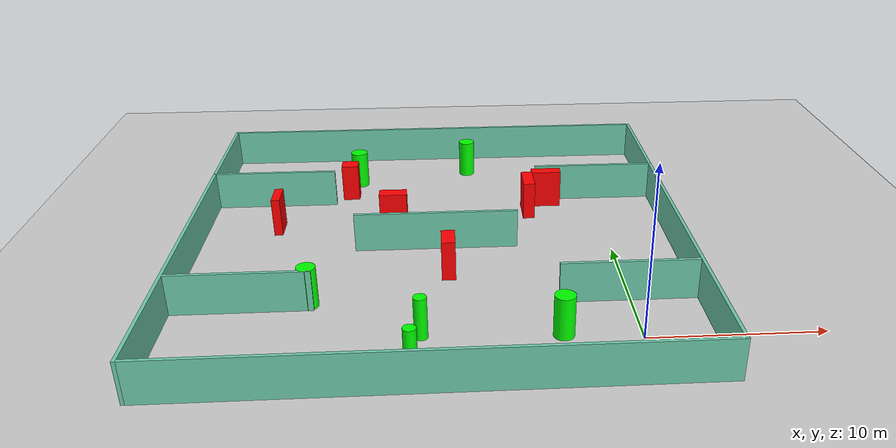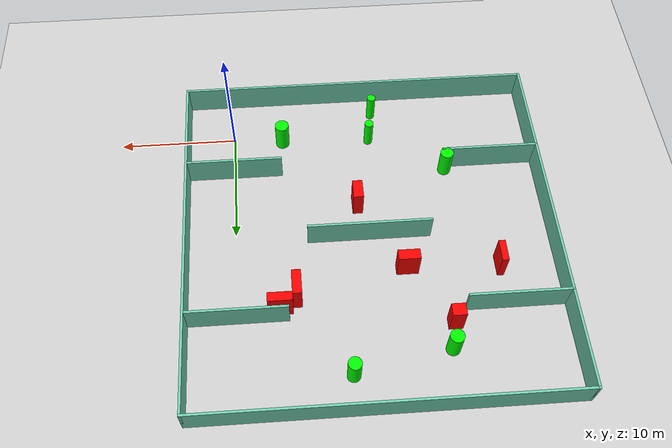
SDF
<sdf version="1.7">
 <world name="default">
  <light name="sun" type="directional">
   <pose>0 0 10 0 -0 0</pose>
   <diffuse>0.8 0.8 0.8 1</diffuse>
   <specular>0.2 0.2 0.2 1</specular>
   <attenuation>
    <range>1000</range>
    <constant>0.9</constant>
    <linear>0.01</linear>
    <quadratic>0.001</quadratic>
   </attenuation>
   <direction>-0.5 0.1 -0.9</direction>
   <spot><inner_angle>0</inner_angle><outer_angle>0</outer_angle><falloff>0</falloff></spot>
  </light>
  <model name="ground_plane">
   <static>1</static>
   <link name="link">
    <collision name="collision">
     <geometry><plane><normal>0 0 1</normal><size>100 100</size></plane></geometry>
     <surface>
      <contact><collide_bitmask>65535</collide_bitmask></contact>
      <friction><ode><mu>100</mu><mu2>50</mu2></ode></friction>
     </surface>
    </collision>
    <visual name="visual">
     <cast_shadows>0</cast_shadows>
     <geometry><plane><normal>0 0 1</normal><size>100 100</size></plane></geometry>
     <material>
      <script><uri>file://media/materials/scripts/gazebo.material</uri><name>Gazebo/Grey</name></script>
     </material>
    </visual>
   </link>
  </model>
  <gravity>0 0 -9.8</gravity>
  <magnetic_field>6e-06 2.3e-05 -4.2e-05</magnetic_field>
  <atmosphere type="adiabatic"/>
  <physics type="ode">
   <max_step_size>0.001</max_step_size>
   <real_time_factor>1</real_time_factor>
   <real_time_update_rate>1000</real_time_update_rate>
  </physics>
  <scene><ambient>0.4 0.4 0.4 1</ambient><background>0.7 0.7 0.7 1</background><shadows>1</shadows></scene>
  <spherical_coordinates>
   <surface_model>EARTH_WGS84</surface_model>
   <latitude_deg>0</latitude_deg>
   <longitude_deg>0</longitude_deg>
   <elevation>0</elevation>
   <heading_deg>0</heading_deg>
  </spherical_coordinates>
  <model name="my_base_walls">
   <link name="Wall_10">
    <collision name="Wall_10_Collision">
     <geometry><box><size>8.2 0.2 2.5</size></box></geometry>
     <pose>0 0 1.25 0 -0 0</pose>
    </collision>
    <visual name="Wall_10_Visual">
     <pose>0 0 1.25 0 -0 0</pose>
     <geometry><box><size>8.2 0.2 2.5</size></box></geometry>
     <material>
      <script><uri>file://media/materials/scripts/gazebo.material</uri><name>Gazebo/Grey</name></script>
      <ambient>0.435294 0.796078 0.67451 1</ambient>
     </material>
     <meta><layer>0</layer></meta>
    </visual>
    <pose>-11 -7 0 0 -0 0</pose>
   </link>
   <link name="Wall_12">
    <collision name="Wall_12_Collision">
     <geometry><box><size>8.2 0.2 2.5</size></box></geometry>
     <pose>0 0 1.25 0 -0 0</pose>
    </collision>
    <visual name="Wall_12_Visual">
     <pose>0 0 1.25 0 -0 0</pose>
     <geometry><box><size>8.2 0.2 2.5</size></box></geometry>
     <material>
      <script><uri>file://media/materials/scripts/gazebo.material</uri><name>Gazebo/Grey</name></script>
      <ambient>0.435294 0.796078 0.67451 1</ambient>
     </material>
     <meta><layer>0</layer></meta>
    </visual>
    <pose>-11 7 0 0 -0 0</pose>
   </link>
   <link name="Wall_14">
    <collision name="Wall_14_Collision">
     <geometry><box><size>8.2 0.2 2.5</size></box></geometry>
     <pose>0 0 1.25 0 -0 0</pose>
    </collision>
    <visual name="Wall_14_Visual">
     <pose>0 0 1.25 0 -0 0</pose>
     <geometry><box><size>8.2 0.2 2.5</size></box></geometry>
     <material>
      <script><uri>file://media/materials/scripts/gazebo.material</uri><name>Gazebo/Grey</name></script>
      <ambient>0.435294 0.796078 0.67451 1</ambient>
     </material>
     <meta><layer>0</layer></meta>
    </visual>
    <pose>11 7 0 0 -0 3.14159</pose>
   </link>
   <link name="Wall_16">
    <collision name="Wall_16_Collision">
     <geometry><box><size>10.2 0.2 2.5</size></box></geometry>
     <pose>0 0 1.25 0 -0 0</pose>
    </collision>
    <visual name="Wall_16_Visual">
     <pose>0 0 1.25 0 -0 0</pose>
     <geometry><box><size>10.2 0.2 2.5</size></box></geometry>
     <material>
      <script><uri>file://media/materials/scripts/gazebo.material</uri><name>Gazebo/Grey</name></script>
      <ambient>0.435294 0.796078 0.67451 1</ambient>
     </material>
     <meta><layer>0</layer></meta>
    </visual>
    <pose>0 0 0 0 -0 3.14159</pose>
   </link>
   <link name="Wall_2">
    <collision name="Wall_2_Collision">
     <geometry><box><size>30.2 0.2 2.5</size></box></geometry>
     <pose>0 0 1.25 0 -0 0</pose>
    </collision>
    <visual name="Wall_2_Visual">
     <pose>0 0 1.25 0 -0 0</pose>
     <geometry><box><size>30.2 0.2 2.5</size></box></geometry>
     <material>
      <script><uri>file://media/materials/scripts/gazebo.material</uri><name>Gazebo/Grey</name></script>
      <ambient>0.435294 0.796078 0.67451 1</ambient>
     </material>
     <meta><layer>0</layer></meta>
    </visual>
    <pose>0 -15 0 0 -0 3.14159</pose>
   </link>
   <link name="Wall_3">
    <collision name="Wall_3_Collision">
     <geometry><box><size>30.2 0.2 2.5</size></box></geometry>
     <pose>0 0 1.25 0 -0 0</pose>
    </collision>
    <visual name="Wall_3_Visual">
     <pose>0 0 1.25 0 -0 0</pose>
     <geometry><box><size>30.2 0.2 2.5</size></box></geometry>
     <material>
      <script><uri>file://media/materials/scripts/gazebo.material</uri><name>Gazebo/Grey</name></script>
      <ambient>0.435294 0.796078 0.67451 1</ambient>
     </material>
     <meta><layer>0</layer></meta>
    </visual>
    <pose>-15 0 0 0 -0 1.5708</pose>
   </link>
   <link name="Wall_4">
    <collision name="Wall_4_Collision">
     <geometry><box><size>30.2 0.2 2.5</size></box></geometry>
     <pose>0 0 1.25 0 -0 0</pose>
    </collision>
    <visual name="Wall_4_Visual">
     <pose>0 0 1.25 0 -0 0</pose>
     <geometry><box><size>30.2 0.2 2.5</size></box></geometry>
     <material>
      <script><uri>file://media/materials/scripts/gazebo.material</uri><name>Gazebo/Grey</name></script>
      <ambient>0.435294 0.796078 0.67451 1</ambient>
     </material>
     <meta><layer>0</layer></meta>
    </visual>
    <pose>0 15 0 0 -0 0</pose>
   </link>
   <link name="Wall_6">
    <collision name="Wall_6_Collision">
     <geometry><box><size>30.2 0.2 2.5</size></box></geometry>
     <pose>0 0 1.25 0 -0 0</pose>
    </collision>
    <visual name="Wall_6_Visual">
     <pose>0 0 1.25 0 -0 0</pose>
     <geometry><box><size>30.2 0.2 2.5</size></box></geometry>
     <material>
      <script><uri>file://media/materials/scripts/gazebo.material</uri><name>Gazebo/Grey</name></script>
      <ambient>0.435294 0.796078 0.67451 1</ambient>
     </material>
     <meta><layer>0</layer></meta>
    </visual>
    <pose>15 0 0 0 -0 1.5708</pose>
   </link>
   <link name="Wall_8">
    <collision name="Wall_8_Collision">
     <geometry><box><size>8.2 0.2 2.5</size></box></geometry>
     <pose>0 0 1.25 0 -0 0</pose>
    </collision>
    <visual name="Wall_8_Visual">
     <pose>0 0 1.25 0 -0 0</pose>
     <geometry><box><size>8.2 0.2 2.5</size></box></geometry>
     <material>
      <script><uri>file://media/materials/scripts/gazebo.material</uri><name>Gazebo/Grey</name></script>
      <ambient>0.435294 0.796078 0.67451 1</ambient>
     </material>
     <meta><layer>0</layer></meta>
    </visual>
    <pose>11 -7 0 0 -0 3.14159</pose>
   </link>
   <static>1</static>
   <pose>-11 11 0 0 -0 0</pose>
  </model>
  <model name="cylinder1">
   <static>1</static>
   <link name="link">
    <inertial>
     <mass>1</mass>
     <inertia><ixx>0.5</ixx><ixy>0</ixy><ixz>0</ixz><iyy>0.5</iyy><iyz>0</iyz><izz>1</izz></inertia>
    </inertial>
    <collision name="collision">
     <geometry><cylinder><radius>0.3591095966779772</radius><length>2.5</length></cylinder></geometry>
    </collision>
    <visual name="visual">
     <geometry><cylinder><radius>0.3591095966779772</radius><length>2.5</length></cylinder></geometry>
     <material>
      <ambient>0 1 0 1</ambient>
      <diffuse>0 1 0 1</diffuse>
      <specular>0.1 0.1 0.1 1</specular>
      <emissive>0 0 0 0</emissive>
     </material>
    </visual>
   </link>
   <pose>-12.368341144254613 -2.0823069545834576 1.25 0 0 0</pose>
  </model>
  <model name="cylinder2">
   <static>1</static>
   <link name="link">
    <inertial>
     <mass>1</mass>
     <inertia><ixx>0.5</ixx><ixy>0</ixy><ixz>0</ixz><iyy>0.5</iyy><iyz>0</iyz><izz>1</izz></inertia>
    </inertial>
    <collision name="collision">
     <geometry><cylinder><radius>0.5368916873683218</radius><length>2.5</length></cylinder></geometry>
    </collision>
    <visual name="visual">
     <geometry><cylinder><radius>0.5368916873683218</radius><length>2.5</length></cylinder></geometry>
     <material>
      <ambient>0 1 0 1</ambient>
      <diffuse>0 1 0 1</diffuse>
      <specular>0.1 0.1 0.1 1</specular>
      <emissive>0 0 0 0</emissive>
     </material>
    </visual>
   </link>
   <pose>-8.68458035936314 22.97969114054613 1.25 0 0 0</pose>
  </model>
  <model name="cylinder3">
   <static>1</static>
   <link name="link">
    <inertial>
     <mass>1</mass>
     <inertia><ixx>0.5</ixx><ixy>0</ixy><ixz>0</ixz><iyy>0.5</iyy><iyz>0</iyz><izz>1</izz></inertia>
    </inertial>
    <collision name="collision">
     <geometry><cylinder><radius>0.37195417208187337</radius><length>2.5</length></cylinder></geometry>
    </collision>
    <visual name="visual">
     <geometry><cylinder><radius>0.37195417208187337</radius><length>2.5</length></cylinder></geometry>
     <material>
      <ambient>0 1 0 1</ambient>
      <diffuse>0 1 0 1</diffuse>
      <specular>0.1 0.1 0.1 1</specular>
      <emissive>0 0 0 0</emissive>
     </material>
    </visual>
   </link>
   <pose>-11.889161619967364 0.8235019137487312 1.25 0 0 0</pose>
  </model>
  <model name="cylinder4">
   <static>1</static>
   <link name="link">
    <inertial>
     <mass>1</mass>
     <inertia><ixx>0.5</ixx><ixy>0</ixy><ixz>0</ixz><iyy>0.5</iyy><iyz>0</iyz><izz>1</izz></inertia>
    </inertial>
    <collision name="collision">
     <geometry><cylinder><radius>0.5857170963668007</radius><length>2.5</length></cylinder></geometry>
    </collision>
    <visual name="visual">
     <geometry><cylinder><radius>0.5857170963668007</radius><length>2.5</length></cylinder></geometry>
     <material>
      <ambient>0 1 0 1</ambient>
      <diffuse>0 1 0 1</diffuse>
      <specular>0.1 0.1 0.1 1</specular>
      <emissive>0 0 0 0</emissive>
     </material>
    </visual>
   </link>
   <pose>-4.265896034825081 0.5421048092179941 1.25 0 0 0</pose>
  </model>
  <model name="cylinder5">
   <static>1</static>
   <link name="link">
    <inertial>
     <mass>1</mass>
     <inertia><ixx>0.5</ixx><ixy>0</ixy><ixz>0</ixz><iyy>0.5</iyy><iyz>0</iyz><izz>1</izz></inertia>
    </inertial>
    <collision name="collision">
     <geometry><cylinder><radius>0.5517183872018241</radius><length>2.5</length></cylinder></geometry>
    </collision>
    <visual name="visual">
     <geometry><cylinder><radius>0.5517183872018241</radius><length>2.5</length></cylinder></geometry>
     <material>
      <ambient>0 1 0 1</ambient>
      <diffuse>0 1 0 1</diffuse>
      <specular>0.1 0.1 0.1 1</specular>
      <emissive>0 0 0 0</emissive>
     </material>
    </visual>
   </link>
   <pose>-18.228005510765193 4.449992564237791 1.25 0 0 0</pose>
  </model>
  <model name="cylinder6">
   <static>1</static>
   <link name="link">
    <inertial>
     <mass>1</mass>
     <inertia><ixx>0.5</ixx><ixy>0</ixy><ixz>0</ixz><iyy>0.5</iyy><iyz>0</iyz><izz>1</izz></inertia>
    </inertial>
    <collision name="collision">
     <geometry><cylinder><radius>0.5676924592072878</radius><length>2.5</length></cylinder></geometry>
    </collision>
    <visual name="visual">
     <geometry><cylinder><radius>0.5676924592072878</radius><length>2.5</length></cylinder></geometry>
     <material>
      <ambient>0 1 0 1</ambient>
      <diffuse>0 1 0 1</diffuse>
      <specular>0.1 0.1 0.1 1</specular>
      <emissive>0 0 0 0</emissive>
     </material>
    </visual>
   </link>
   <pose>-16.460439580467842 21.338403373206937 1.25 0 0 0</pose>
  </model>
  <model name="box1">
   <static>1</static>
   <link name="link">
    <inertial>
     <mass>1</mass>
     <inertia><ixx>0.083</ixx><ixy>0</ixy><ixz>0</ixz><iyy>0.083</iyy><iyz>0</iyz><izz>0.083</izz></inertia>
    </inertial>
    <collision name="collision">
     <geometry><box><size>0.8317831457253192 1.6461075739319657 2.5</size></box></geometry>
    </collision>
    <visual name="visual">
     <geometry><box><size>0.8317831457253192 1.6461075739319657 2.5</size></box></geometry>
     <material>
      <ambient>1 0 0 1</ambient>
      <diffuse>1 0 0 1</diffuse>
      <specular>0.1 0.1 0.1 1</specular>
      <emissive>0 0 0 0</emissive>
     </material>
    </visual>
    <sensor name="my_contact" type="contact">
     <contact><collision>box_collision</collision><topic>__default_topic__</topic></contact>
    </sensor>
   </link>
   <pose>-10.298056317047017 7.640619846167219 1.25 0 0 0</pose>
  </model>
  <model name="box2">
   <static>1</static>
   <link name="link">
    <inertial>
     <mass>1</mass>
     <inertia><ixx>0.083</ixx><ixy>0</ixy><ixz>0</ixz><iyy>0.083</iyy><iyz>0</iyz><izz>0.083</izz></inertia>
    </inertial>
    <collision name="collision">
     <geometry><box><size>1.1166553513349735 0.9944436779699206 2.5</size></box></geometry>
    </collision>
    <visual name="visual">
     <geometry><box><size>1.1166553513349735 0.9944436779699206 2.5</size></box></geometry>
     <material>
      <ambient>1 0 0 1</ambient>
      <diffuse>1 0 0 1</diffuse>
      <specular>0.1 0.1 0.1 1</specular>
      <emissive>0 0 0 0</emissive>
     </material>
    </visual>
    <sensor name="my_contact" type="contact">
     <contact><collision>box_collision</collision><topic>__default_topic__</topic></contact>
    </sensor>
   </link>
   <pose>-16.940100442141436 19.178989517408148 1.25 0 0 0</pose>
  </model>
  <model name="box3">
   <static>1</static>
   <link name="link">
    <inertial>
     <mass>1</mass>
     <inertia><ixx>0.083</ixx><ixy>0</ixy><ixz>0</ixz><iyy>0.083</iyy><iyz>0</iyz><izz>0.083</izz></inertia>
    </inertial>
    <collision name="collision">
     <geometry><box><size>0.5350646126386774 1.8097583333088851 2.5</size></box></geometry>
    </collision>
    <visual name="visual">
     <geometry><box><size>0.5350646126386774 1.8097583333088851 2.5</size></box></geometry>
     <material>
      <ambient>1 0 0 1</ambient>
      <diffuse>1 0 0 1</diffuse>
      <specular>0.1 0.1 0.1 1</specular>
      <emissive>0 0 0 0</emissive>
     </material>
    </visual>
    <sensor name="my_contact" type="contact">
     <contact><collision>box_collision</collision><topic>__default_topic__</topic></contact>
    </sensor>
   </link>
   <pose>-21.263499547753025 14.291114620212262 1.25 0 0 0</pose>
  </model>
  <model name="box4">
   <static>1</static>
   <link name="link">
    <inertial>
     <mass>1</mass>
     <inertia><ixx>0.083</ixx><ixy>0</ixy><ixz>0</ixz><iyy>0.083</iyy><iyz>0</iyz><izz>0.083</izz></inertia>
    </inertial>
    <collision name="collision">
     <geometry><box><size>1.77949976178628 0.8716851142599045 2.5</size></box></geometry>
    </collision>
    <visual name="visual">
     <geometry><box><size>1.77949976178628 0.8716851142599045 2.5</size></box></geometry>
     <material>
      <ambient>1 0 0 1</ambient>
      <diffuse>1 0 0 1</diffuse>
      <specular>0.1 0.1 0.1 1</specular>
      <emissive>0 0 0 0</emissive>
     </material>
    </visual>
    <sensor name="my_contact" type="contact">
     <contact><collision>box_collision</collision><topic>__default_topic__</topic></contact>
    </sensor>
   </link>
   <pose>-13.777456777264247 14.152864276727403 1.25 0 0 0</pose>
  </model>
  <model name="box5">
   <static>1</static>
   <link name="link">
    <inertial>
     <mass>1</mass>
     <inertia><ixx>0.083</ixx><ixy>0</ixy><ixz>0</ixz><iyy>0.083</iyy><iyz>0</iyz><izz>0.083</izz></inertia>
    </inertial>
    <collision name="collision">
     <geometry><box><size>1.9729020167396039 0.7541593779645658 2.5</size></box></geometry>
    </collision>
    <visual name="visual">
     <geometry><box><size>1.9729020167396039 0.7541593779645658 2.5</size></box></geometry>
     <material>
      <ambient>1 0 0 1</ambient>
      <diffuse>1 0 0 1</diffuse>
      <specular>0.1 0.1 0.1 1</specular>
      <emissive>0 0 0 0</emissive>
     </material>
    </visual>
    <sensor name="my_contact" type="contact">
     <contact><collision>box_collision</collision><topic>__default_topic__</topic></contact>
    </sensor>
   </link>
   <pose>-3.4296607595802584 17.15140503001288 1.25 0 0 0</pose>
  </model>
  <model name="box6">
   <static>1</static>
   <link name="link">
    <inertial>
     <mass>1</mass>
     <inertia><ixx>0.083</ixx><ixy>0</ixy><ixz>0</ixz><iyy>0.083</iyy><iyz>0</iyz><izz>0.083</izz></inertia>
    </inertial>
    <collision name="collision">
     <geometry><box><size>0.7587390344711828 2.075007141266636 2.5</size></box></geometry>
    </collision>
    <visual name="visual">
     <geometry><box><size>0.7587390344711828 2.075007141266636 2.5</size></box></geometry>
     <material>
      <ambient>1 0 0 1</ambient>
      <diffuse>1 0 0 1</diffuse>
      <specular>0.1 0.1 0.1 1</specular>
      <emissive>0 0 0 0</emissive>
     </material>
    </visual>
    <sensor name="my_contact" type="contact">
     <contact><collision>box_collision</collision><topic>__default_topic__</topic></contact>
    </sensor>
   </link>
   <pose>-4.771250087957462 15.94515940216261 1.25 0 0 0</pose>
  </model>
 </world>
</sdf>
